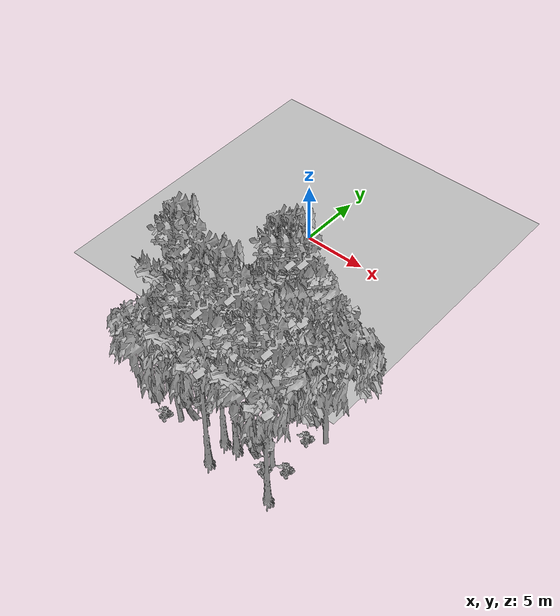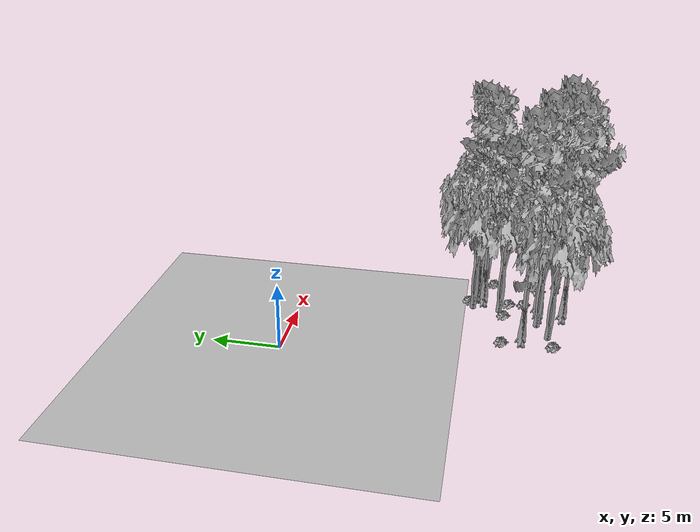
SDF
<sdf version="1.7">
 <world name="default">
  <model name="ground_plane">
   <static>1</static>
   <link name="link">
    <collision name="collision">
     <pose>-50 0 0 0 -0 0</pose>
     <geometry><plane><normal>0 0 1</normal><size>80 80</size></plane></geometry>
     <surface><contact><ode><min_depth>0.01</min_depth><max_vel>0</max_vel></ode></contact></surface>
    </collision>
    <visual name="grass">
     <cast_shadows>0</cast_shadows>
     <geometry>
      <mesh>
       <scale>0.46714285714285714 0.46714285714285714 0.1</scale>
       <uri>file://grass_plane/meshes/grass_plane.dae</uri>
      </mesh>
     </geometry>
    </visual>
   </link>
  </model>
  <model name="Tree 16">
   <static>1</static>
   <pose>10.309898231262537 -13.495058565896294 0 1.57079 -0 0</pose>
   <link name="link">
    <collision name="collision">
     <geometry><mesh><scale>3.5 5 3.5</scale><uri>model://tree_9/meshes/tree_9.obj</uri></mesh></geometry>
    </collision>
    <visual name="visual">
     <geometry><mesh><scale>3.5 5 3.5</scale><uri>model://tree_9/meshes/tree_9.obj</uri></mesh></geometry>
    </visual>
   </link>
  </model>
  <model name="Tree 34">
   <static>1</static>
   <pose>4.572784560352893 -16.918602772408377 0 1.57079 -0 0</pose>
   <link name="link">
    <collision name="collision">
     <geometry><mesh><scale>3.5 5 3.5</scale><uri>model://tree_9/meshes/tree_9.obj</uri></mesh></geometry>
    </collision>
    <visual name="visual">
     <geometry><mesh><scale>3.5 5 3.5</scale><uri>model://tree_9/meshes/tree_9.obj</uri></mesh></geometry>
    </visual>
   </link>
  </model>
  <model name="Tree 58">
   <static>1</static>
   <pose>13.013516110184646 -14.06887964942171 0 1.57079 -0 0</pose>
   <link name="link">
    <collision name="collision">
     <geometry><mesh><scale>3.5 5 3.5</scale><uri>model://tree_2/meshes/tree_2.obj</uri></mesh></geometry>
    </collision>
    <visual name="visual">
     <geometry><mesh><scale>3.5 5 3.5</scale><uri>model://tree_2/meshes/tree_2.obj</uri></mesh></geometry>
    </visual>
   </link>
  </model>
  <model name="Tree 130">
   <static>1</static>
   <pose>11.601294445349403 -17.66227086100365 0 1.57079 -0 0</pose>
   <link name="link">
    <collision name="collision">
     <geometry><mesh><scale>3.5 5 3.5</scale><uri>model://tree_2/meshes/tree_2.obj</uri></mesh></geometry>
    </collision>
    <visual name="visual">
     <geometry><mesh><scale>3.5 5 3.5</scale><uri>model://tree_2/meshes/tree_2.obj</uri></mesh></geometry>
    </visual>
   </link>
  </model>
  <model name="Tree 135">
   <static>1</static>
   <pose>8.383259521127364 -19.961257401085337 0 1.57079 -0 0</pose>
   <link name="link">
    <collision name="collision">
     <geometry><mesh><scale>3.5 5 3.5</scale><uri>model://tree_9/meshes/tree_9.obj</uri></mesh></geometry>
    </collision>
    <visual name="visual">
     <geometry><mesh><scale>3.5 5 3.5</scale><uri>model://tree_9/meshes/tree_9.obj</uri></mesh></geometry>
    </visual>
   </link>
  </model>
  <model name="Tree 264">
   <static>1</static>
   <pose>9.791099774179479 -13.972277467371672 0 1.57079 -0 0</pose>
   <link name="link">
    <collision name="collision">
     <geometry><mesh><scale>3.5 5 3.5</scale><uri>model://tree_9/meshes/tree_9.obj</uri></mesh></geometry>
    </collision>
    <visual name="visual">
     <geometry><mesh><scale>3.5 5 3.5</scale><uri>model://tree_9/meshes/tree_9.obj</uri></mesh></geometry>
    </visual>
   </link>
  </model>
  <model name="Tree 277">
   <static>1</static>
   <pose>9.059621010098532 -18.087923898025664 0 1.57079 -0 0</pose>
   <link name="link">
    <collision name="collision">
     <geometry><mesh><scale>3.5 5 3.5</scale><uri>model://tree_9/meshes/tree_9.obj</uri></mesh></geometry>
    </collision>
    <visual name="visual">
     <geometry><mesh><scale>3.5 5 3.5</scale><uri>model://tree_9/meshes/tree_9.obj</uri></mesh></geometry>
    </visual>
   </link>
  </model>
  <model name="Tree 280">
   <static>1</static>
   <pose>4.633027306462566 -18.768665237292748 0 1.57079 -0 0</pose>
   <link name="link">
    <collision name="collision">
     <geometry><mesh><scale>3.5 5 3.5</scale><uri>model://tree_2/meshes/tree_2.obj</uri></mesh></geometry>
    </collision>
    <visual name="visual">
     <geometry><mesh><scale>3.5 5 3.5</scale><uri>model://tree_2/meshes/tree_2.obj</uri></mesh></geometry>
    </visual>
   </link>
  </model>
  <model name="Tree 417">
   <static>1</static>
   <pose>6.23613479914858 -17.997546200487093 0 1.57079 -0 0</pose>
   <link name="link">
    <collision name="collision">
     <geometry><mesh><scale>3.5 5 3.5</scale><uri>model://tree_2/meshes/tree_2.obj</uri></mesh></geometry>
    </collision>
    <visual name="visual">
     <geometry><mesh><scale>3.5 5 3.5</scale><uri>model://tree_2/meshes/tree_2.obj</uri></mesh></geometry>
    </visual>
   </link>
  </model>
  <model name="Tree 425">
   <static>1</static>
   <pose>8.030477961780385 -13.225530099473481 0 1.57079 -0 0</pose>
   <link name="link">
    <collision name="collision">
     <geometry><mesh><scale>3.5 5 3.5</scale><uri>model://tree_2/meshes/tree_2.obj</uri></mesh></geometry>
    </collision>
    <visual name="visual">
     <geometry><mesh><scale>3.5 5 3.5</scale><uri>model://tree_2/meshes/tree_2.obj</uri></mesh></geometry>
    </visual>
   </link>
  </model>
  <model name="Tree 456">
   <static>1</static>
   <pose>10.023654013543961 -13.869478861798122 0 1.57079 -0 0</pose>
   <link name="link">
    <collision name="collision">
     <geometry><mesh><scale>3.5 5 3.5</scale><uri>model://tree_2/meshes/tree_2.obj</uri></mesh></geometry>
    </collision>
    <visual name="visual">
     <geometry><mesh><scale>3.5 5 3.5</scale><uri>model://tree_2/meshes/tree_2.obj</uri></mesh></geometry>
    </visual>
   </link>
  </model>
  <model name="Tree 481">
   <static>1</static>
   <pose>8.107172085457186 -18.198365466124542 0 1.57079 -0 0</pose>
   <link name="link">
    <collision name="collision">
     <geometry><mesh><scale>3.5 5 3.5</scale><uri>model://tree_9/meshes/tree_9.obj</uri></mesh></geometry>
    </collision>
    <visual name="visual">
     <geometry><mesh><scale>3.5 5 3.5</scale><uri>model://tree_9/meshes/tree_9.obj</uri></mesh></geometry>
    </visual>
   </link>
  </model>
  <model name="Tree 552">
   <static>1</static>
   <pose>13.128513292758527 -19.69129694781108 0 1.57079 -0 0</pose>
   <link name="link">
    <collision name="collision">
     <geometry><mesh><scale>3.5 5 3.5</scale><uri>model://tree_9/meshes/tree_9.obj</uri></mesh></geometry>
    </collision>
    <visual name="visual">
     <geometry><mesh><scale>3.5 5 3.5</scale><uri>model://tree_9/meshes/tree_9.obj</uri></mesh></geometry>
    </visual>
   </link>
  </model>
  <model name="Tree 592">
   <static>1</static>
   <pose>7.794948045046702 -15.203972299252104 0 1.57079 -0 0</pose>
   <link name="link">
    <collision name="collision">
     <geometry><mesh><scale>3.5 5 3.5</scale><uri>model://tree_2/meshes/tree_2.obj</uri></mesh></geometry>
    </collision>
    <visual name="visual">
     <geometry><mesh><scale>3.5 5 3.5</scale><uri>model://tree_2/meshes/tree_2.obj</uri></mesh></geometry>
    </visual>
   </link>
  </model>
  <model name="Bush 202">
   <static>1</static>
   <pose>3.5559889518123526 -19.123746580101503 0 1.57079 -0 0</pose>
   <link name="link">
    <collision name="collision">
     <geometry><mesh><scale>2 2 2</scale><uri>model://bush_2/meshes/bush_2.obj</uri></mesh></geometry>
     <surface><contact><collide_without_contact>false</collide_without_contact></contact></surface>
    </collision>
    <visual name="visual">
     <geometry><mesh><scale>2 2 2</scale><uri>model://bush_2/meshes/bush_2.obj</uri></mesh></geometry>
    </visual>
   </link>
  </model>
  <model name="Bush 284">
   <static>1</static>
   <pose>12.586787574248163 -17.407838895182877 0 1.57079 -0 0</pose>
   <link name="link">
    <collision name="collision">
     <geometry><mesh><scale>2 2 2</scale><uri>model://bush_2/meshes/bush_2.obj</uri></mesh></geometry>
     <surface><contact><collide_without_contact>false</collide_without_contact></contact></surface>
    </collision>
    <visual name="visual">
     <geometry><mesh><scale>2 2 2</scale><uri>model://bush_2/meshes/bush_2.obj</uri></mesh></geometry>
    </visual>
   </link>
  </model>
  <model name="Bush 334">
   <static>1</static>
   <pose>8.959984355828652 -12.856181584988555 0 1.57079 -0 0</pose>
   <link name="link">
    <collision name="collision">
     <geometry><mesh><scale>2 2 2</scale><uri>model://bush_2/meshes/bush_2.obj</uri></mesh></geometry>
     <surface><contact><collide_without_contact>false</collide_without_contact></contact></surface>
    </collision>
    <visual name="visual">
     <geometry><mesh><scale>2 2 2</scale><uri>model://bush_2/meshes/bush_2.obj</uri></mesh></geometry>
    </visual>
   </link>
  </model>
  <model name="Bush 407">
   <static>1</static>
   <pose>9.129446598520836 -17.052424013074035 0 1.57079 -0 0</pose>
   <link name="link">
    <collision name="collision">
     <geometry><mesh><scale>2 2 2</scale><uri>model://bush_2/meshes/bush_2.obj</uri></mesh></geometry>
     <surface><contact><collide_without_contact>false</collide_without_contact></contact></surface>
    </collision>
    <visual name="visual">
     <geometry><mesh><scale>2 2 2</scale><uri>model://bush_2/meshes/bush_2.obj</uri></mesh></geometry>
    </visual>
   </link>
  </model>
  <model name="Bush 409">
   <static>1</static>
   <pose>11.44576509517087 -18.270117194724513 0 1.57079 -0 0</pose>
   <link name="link">
    <collision name="collision">
     <geometry><mesh><scale>2 2 2</scale><uri>model://bush_2/meshes/bush_2.obj</uri></mesh></geometry>
     <surface><contact><collide_without_contact>false</collide_without_contact></contact></surface>
    </collision>
    <visual name="visual">
     <geometry><mesh><scale>2 2 2</scale><uri>model://bush_2/meshes/bush_2.obj</uri></mesh></geometry>
    </visual>
   </link>
  </model>
  <model name="Bush 446">
   <static>1</static>
   <pose>11.988957816508261 -14.730163369592812 0 1.57079 -0 0</pose>
   <link name="link">
    <collision name="collision">
     <geometry><mesh><scale>2 2 2</scale><uri>model://bush_2/meshes/bush_2.obj</uri></mesh></geometry>
     <surface><contact><collide_without_contact>false</collide_without_contact></contact></surface>
    </collision>
    <visual name="visual">
     <geometry><mesh><scale>2 2 2</scale><uri>model://bush_2/meshes/bush_2.obj</uri></mesh></geometry>
    </visual>
   </link>
  </model>
  <model name="Bush 553">
   <static>1</static>
   <pose>3.523662473262732 -15.468136441532423 0 1.57079 -0 0</pose>
   <link name="link">
    <collision name="collision">
     <geometry><mesh><scale>2 2 2</scale><uri>model://bush_2/meshes/bush_2.obj</uri></mesh></geometry>
     <surface><contact><collide_without_contact>false</collide_without_contact></contact></surface>
    </collision>
    <visual name="visual">
     <geometry><mesh><scale>2 2 2</scale><uri>model://bush_2/meshes/bush_2.obj</uri></mesh></geometry>
    </visual>
   </link>
  </model>
  <model name="Bush 556">
   <static>1</static>
   <pose>7.243964174533559 -15.540145850333111 0 1.57079 -0 0</pose>
   <link name="link">
    <collision name="collision">
     <geometry><mesh><scale>2 2 2</scale><uri>model://bush_2/meshes/bush_2.obj</uri></mesh></geometry>
     <surface><contact><collide_without_contact>false</collide_without_contact></contact></surface>
    </collision>
    <visual name="visual">
     <geometry><mesh><scale>2 2 2</scale><uri>model://bush_2/meshes/bush_2.obj</uri></mesh></geometry>
    </visual>
   </link>
  </model>
  <model name="Bush 608">
   <static>1</static>
   <pose>8.994541697001488 -15.922314715558592 0 1.57079 -0 0</pose>
   <link name="link">
    <collision name="collision">
     <geometry><mesh><scale>2 2 2</scale><uri>model://bush_2/meshes/bush_2.obj</uri></mesh></geometry>
     <surface><contact><collide_without_contact>false</collide_without_contact></contact></surface>
    </collision>
    <visual name="visual">
     <geometry><mesh><scale>2 2 2</scale><uri>model://bush_2/meshes/bush_2.obj</uri></mesh></geometry>
    </visual>
   </link>
  </model>
 </world>
</sdf>
